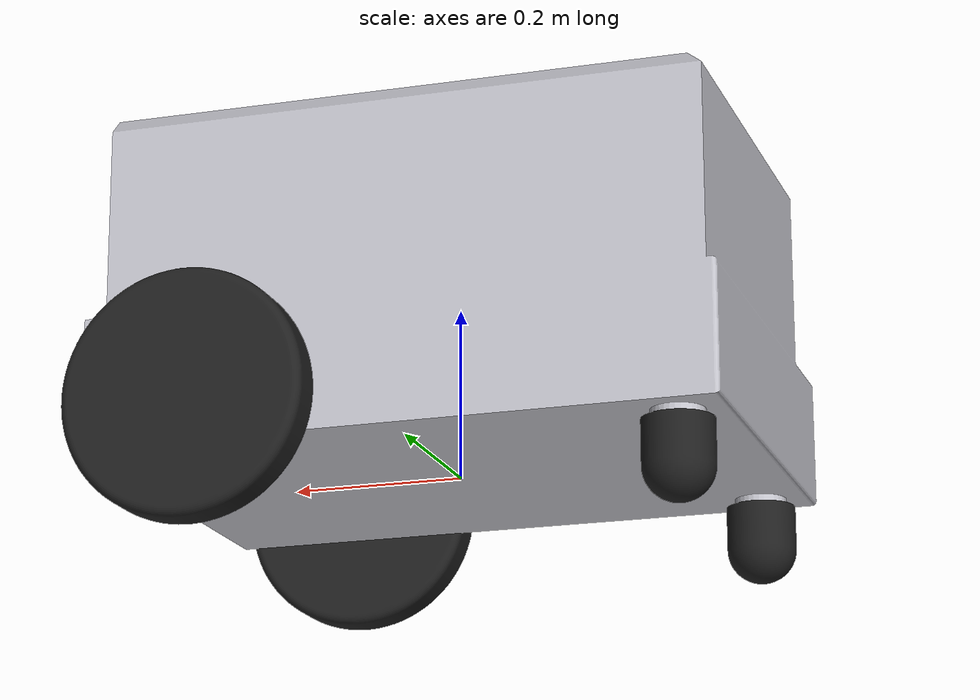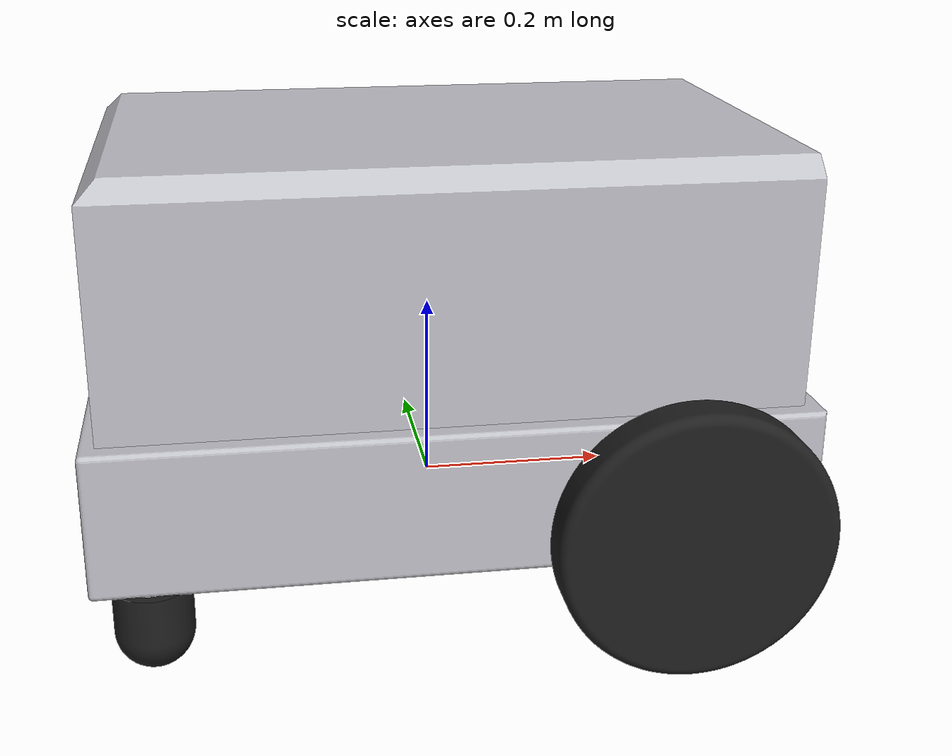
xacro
<?xml version="1.0" ?>
<robot name="donar_robot" xmlns:xacro="http://www.ros.org/wiki/xacro">

<xacro:include filename="$(find donar_robot_description)/urdf/materials.xacro" />
<xacro:include filename="$(find donar_robot_description)/urdf/donar_robot.gazebo" />

<!-- BASE LINK -->
<link name="base_link">
  <inertial>
    <origin xyz="0.00013095962477824982 1.4938322527424564e-05 0.19291134702067492" rpy="0 0 0"/>
    <mass value="35.0"/>
    <inertia ixx="4.525119" iyy="7.683395" izz="8.427305" ixy="-4.4e-05" iyz="0.000243" ixz="-0.008986"/>
  </inertial>
  <visual>
    <origin xyz="0 0 0" rpy="0 0 0"/>
    <geometry>
      <mesh filename="package://donar_robot_description/meshes/base_link.stl" scale="0.001 0.001 0.001"/>
    </geometry>
    <material name="silver"/>
  </visual>
  <collision>
    <origin xyz="0 0 0" rpy="0 0 0"/>
    <geometry>
      <mesh filename="package://donar_robot_description/meshes/base_link.stl" scale="0.001 0.001 0.001"/>
    </geometry>
  </collision>
</link>

<!-- RIGHT WHEEL -->
<link name="right_wheel_1">
  <inertial>
    <origin xyz="0.0 -0.025 0.0" rpy="0 0 0"/>
    <mass value="2.0"/>
    <inertia ixx="0.016277" iyy="0.031234" izz="0.016277" ixy="0.0" iyz="0.0" ixz="0.0"/>
  </inertial>
  <visual>
    <origin xyz="-0.221 0.26 -0.04" rpy="0 0 0"/>
    <geometry>
      <mesh filename="package://donar_robot_description/meshes/right_wheel_1.stl" scale="0.001 0.001 0.001"/>
    </geometry>
    <material name="black"/>
  </visual>
  <collision>
    <origin xyz="-0.221 0.26 -0.04" rpy="0 0 0"/>
    <geometry>
      <mesh filename="package://donar_robot_description/meshes/right_wheel_1.stl" scale="0.001 0.001 0.001"/>
    </geometry>
  </collision>
</link>

<joint name="right_wheel_joint" type="continuous">
  <origin xyz="0.221 -0.26 0.04" rpy="0 0 0"/>
  <parent link="base_link"/>
  <child link="right_wheel_1"/>
  <axis xyz="0.0 1.0 0.0"/>
</joint>

<!-- LEFT WHEEL -->
<link name="left_wheel_1">
  <inertial>
    <origin xyz="0.0 0.025 0.0" rpy="0 0 0"/>
    <mass value="2.0"/>
    <inertia ixx="0.016277" iyy="0.031234" izz="0.016277" ixy="0.0" iyz="0.0" ixz="0.0"/>
  </inertial>
  <visual>
    <origin xyz="-0.221 -0.26 -0.04" rpy="0 0 0"/>
    <geometry>
      <mesh filename="package://donar_robot_description/meshes/left_wheel_1.stl" scale="0.001 0.001 0.001"/>
    </geometry>
    <material name="black"/>
  </visual>
  <collision>
    <origin xyz="-0.221 -0.26 -0.04" rpy="0 0 0"/>
    <geometry>
      <mesh filename="package://donar_robot_description/meshes/left_wheel_1.stl" scale="0.001 0.001 0.001"/>
    </geometry>
  </collision>
</link>

<joint name="left_wheel_joint" type="continuous">
  <origin xyz="0.221 0.26 0.04" rpy="0 0 0"/>
  <parent link="base_link"/>
  <child link="left_wheel_1"/>
  <axis xyz="0.0 1.0 0.0"/>
</joint>

<!-- LEFT CASTER WHEEL (NEW SIMPLIFIED DESIGN) -->
<link name="left_caster_wheel_1">
  <inertial>
    <!-- Inertial from new exported URDF -->
    <origin xyz="0.0 0.0 -0.03891304347826075" rpy="0 0 0"/>
    <mass value="0.408490820770769"/>
    <inertia ixx="0.000369" iyy="0.000369" izz="0.000304" ixy="0.0" iyz="0.0" ixz="0.0"/>
  </inertial>
  <visual>
    <!-- Visual offset from new URDF -->
    <origin xyz="0.304 -0.2 0.01" rpy="0 0 0"/>
    <geometry>
      <mesh filename="package://donar_robot_description/meshes/left_caster_wheel_1.stl" scale="0.001 0.001 0.001"/>
    </geometry>
    <material name="black"/>
  </visual>
  <collision>
    <!-- Use sphere collision for better physics -->
    <origin xyz="0.0 0.0 -0.05" rpy="0 0 0"/>
    <geometry>
      <sphere radius="0.04"/>
    </geometry>
    <surface>
      <friction>
        <ode>
          <mu>0.01</mu>
          <mu2>0.01</mu2>
        </ode>
      </friction>
    </surface>
  </collision>
</link>

<joint name="left_caster_joint" type="fixed">
  <!-- Position from new URDF -->
  <origin xyz="-0.304 0.2 -0.01" rpy="0 0 0"/>
  <parent link="base_link"/>
  <child link="left_caster_wheel_1"/>
</joint>

<!-- RIGHT CASTER WHEEL (NEW SIMPLIFIED DESIGN) -->
<link name="right_caster_wheel_1">
  <inertial>
    <!-- Inertial from new exported URDF -->
    <origin xyz="0.0 0.0 -0.03891304347826075" rpy="0 0 0"/>
    <mass value="0.408490820770769"/>
    <inertia ixx="0.000369" iyy="0.000369" izz="0.000304" ixy="0.0" iyz="0.0" ixz="0.0"/>
  </inertial>
  <visual>
    <!-- Visual offset from new URDF -->
    <origin xyz="0.304 0.2 0.01" rpy="0 0 0"/>
    <geometry>
      <mesh filename="package://donar_robot_description/meshes/right_caster_wheel_1.stl" scale="0.001 0.001 0.001"/>
    </geometry>
    <material name="black"/>
  </visual>
  <collision>
    <!-- Use sphere collision for better physics -->
    <origin xyz="0.0 0.0 -0.05" rpy="0 0 0"/>
    <geometry>
      <sphere radius="0.04"/>
    </geometry>
    <surface>
      <friction>
        <ode>
          <mu>0.01</mu>
          <mu2>0.01</mu2>
        </ode>
      </friction>
    </surface>
  </collision>
</link>

<joint name="right_caster_joint" type="fixed">
  <!-- Position from new URDF -->
  <origin xyz="-0.304 -0.2 -0.01" rpy="0 0 0"/>
  <parent link="base_link"/>
  <child link="right_caster_wheel_1"/>
</joint>

</robot>
